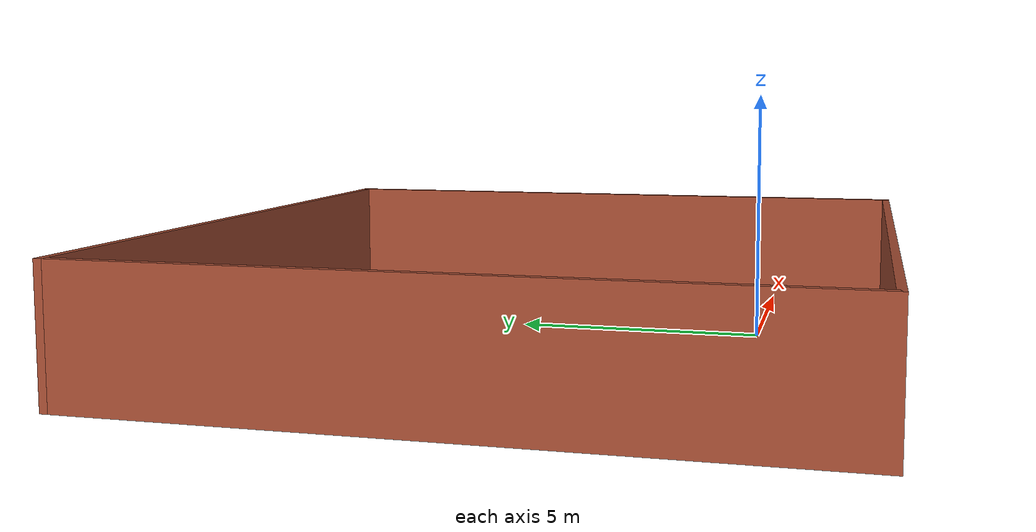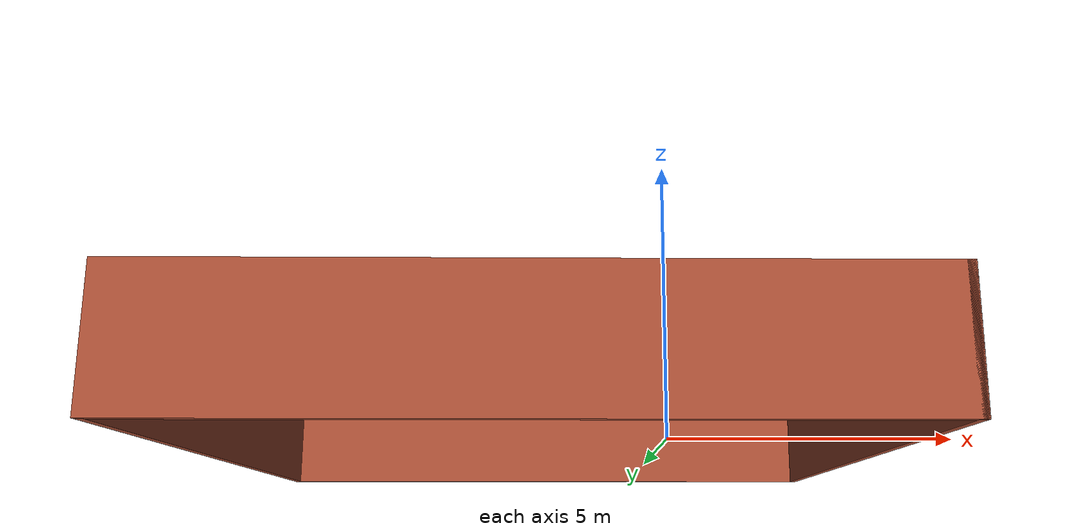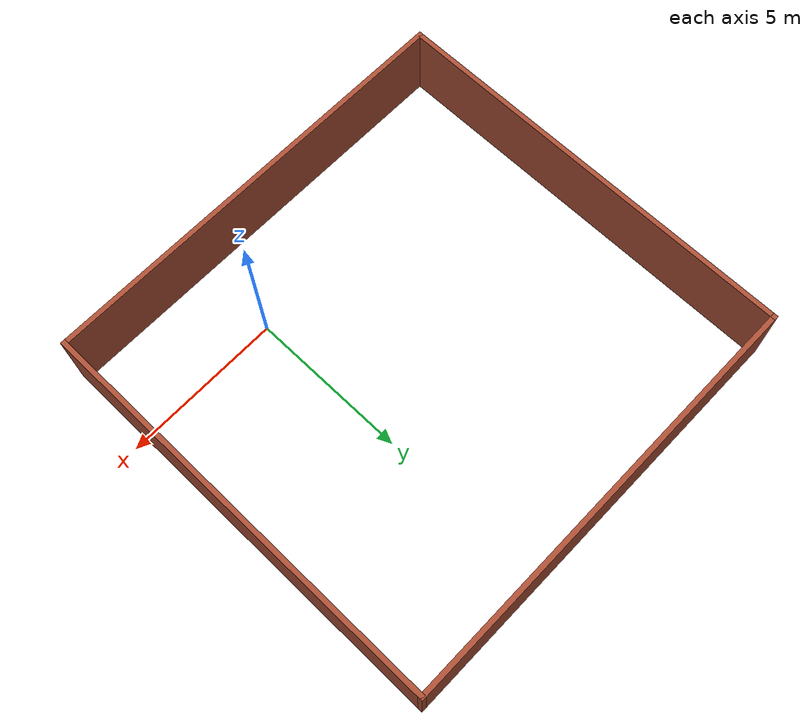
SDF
<?xml version='1.0'?>
<sdf version='1.7'>
  <model name='room'>
    <pose>-2.26931 3.94279 0 0 -0 0</pose>
    <link name='Wall_16'>
      <collision name='Wall_16_Collision'>
        <geometry>
          <box>
            <size>13.75 0.15 2.5</size>
          </box>
        </geometry>
        <pose>0 0 1.25 0 -0 0</pose>
      </collision>
      <visual name='Wall_16_Visual'>
        <pose>0 0 1.25 0 -0 0</pose>
        <geometry>
          <box>
            <size>13.75 0.15 2.5</size>
          </box>
        </geometry>
        <material>
          <script>
            <uri>file://media/materials/scripts/gazebo.material</uri>
            <name>Gazebo/Bricks</name>
          </script>
          <ambient>1 1 1 1</ambient>
        </material>
        <meta>
          <layer>0</layer>
        </meta>
      </visual>
      <pose>-0 -6.55 0 0 -0 0</pose>
    </link>
    <link name='Wall_17'>
      <collision name='Wall_17_Collision'>
        <geometry>
          <box>
            <size>13.25 0.15 2.5</size>
          </box>
        </geometry>
        <pose>0 0 1.25 0 -0 0</pose>
      </collision>
      <visual name='Wall_17_Visual'>
        <pose>0 0 1.25 0 -0 0</pose>
        <geometry>
          <box>
            <size>13.25 0.15 2.5</size>
          </box>
        </geometry>
        <material>
          <script>
            <uri>file://media/materials/scripts/gazebo.material</uri>
            <name>Gazebo/Bricks</name>
          </script>
          <ambient>1 1 1 1</ambient>
        </material>
        <meta>
          <layer>0</layer>
        </meta>
      </visual>
      <pose>6.8 0 0 0 -0 1.5708</pose>
    </link>
    <link name='Wall_18'>
      <collision name='Wall_18_Collision'>
        <geometry>
          <box>
            <size>13.75 0.15 2.5</size>
          </box>
        </geometry>
        <pose>0 0 1.25 0 -0 0</pose>
      </collision>
      <visual name='Wall_18_Visual'>
        <pose>0 0 1.25 0 -0 0</pose>
        <geometry>
          <box>
            <size>13.75 0.15 2.5</size>
          </box>
        </geometry>
        <material>
          <script>
            <uri>file://media/materials/scripts/gazebo.material</uri>
            <name>Gazebo/Bricks</name>
          </script>
          <ambient>1 1 1 1</ambient>
        </material>
        <meta>
          <layer>0</layer>
        </meta>
      </visual>
      <pose>-0 6.55 0 0 -0 3.14159</pose>
    </link>
    <link name='Wall_19'>
      <collision name='Wall_19_Collision'>
        <geometry>
          <box>
            <size>13.25 0.15 2.5</size>
          </box>
        </geometry>
        <pose>0 0 1.25 0 -0 0</pose>
      </collision>
      <visual name='Wall_19_Visual'>
        <pose>0 0 1.25 0 -0 0</pose>
        <geometry>
          <box>
            <size>13.25 0.15 2.5</size>
          </box>
        </geometry>
        <material>
          <script>
            <uri>file://media/materials/scripts/gazebo.material</uri>
            <name>Gazebo/Bricks</name>
          </script>
          <ambient>1 1 1 1</ambient>
        </material>
        <meta>
          <layer>0</layer>
        </meta>
      </visual>
      <pose>-6.8 0 0 0 -0 -1.5708</pose>
    </link>
    <static>1</static>
  </model>
</sdf>
